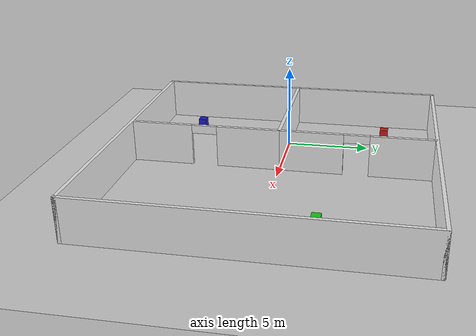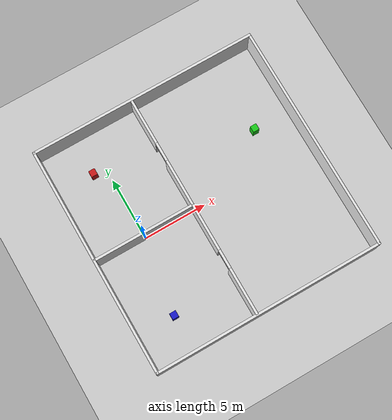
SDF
<?xml version="1.0" ?>
<sdf version="1.8">
  <world name="three_rooms">

    <!-- ====== Plugins ====== -->
    <plugin filename="ignition-gazebo-physics-system"
            name="ignition::gazebo::systems::Physics"/>
    <plugin filename="ignition-gazebo-user-commands-system"
            name="ignition::gazebo::systems::UserCommands"/>
    <plugin filename="ignition-gazebo-scene-broadcaster-system"
            name="ignition::gazebo::systems::SceneBroadcaster"/>
    <plugin filename="ignition-gazebo-contact-system"
            name="ignition::gazebo::systems::Contact"/>

    <!-- ====== Lighting ====== -->
    <light type="directional" name="sun">
      <cast_shadows>true</cast_shadows>
      <pose>0 0 10 0 0 0</pose>
      <diffuse>1 1 1 1</diffuse>
      <specular>0.5 0.5 0.5 1</specular>
      <attenuation>
        <range>1000</range>
        <constant>0.9</constant>
        <linear>0.01</linear>
        <quadratic>0.001</quadratic>
      </attenuation>
      <direction>-0.5 0.1 -0.9</direction>
    </light>

    <!-- ====== Ground Plane ====== -->
    <model name="ground_plane">
      <static>true</static>
      <link name="link">
        <collision name="collision">
          <geometry>
            <plane>
              <normal>0 0 1</normal>
              <size>50 50</size>
            </plane>
          </geometry>
        </collision>
        <visual name="visual">
          <geometry>
            <plane>
              <normal>0 0 1</normal>
              <size>50 50</size>
            </plane>
          </geometry>
          <material>
            <ambient>0.8 0.8 0.8 1</ambient>
            <diffuse>0.8 0.8 0.8 1</diffuse>
          </material>
        </visual>
      </link>
    </model>

    <model name="building">
      <static>true</static>

      <!-- == PERIMETER WALLS == -->

      <!-- North wall: y=9, spans full width -->
      <link name="north_wall">
        <pose>5 9 1.25 0 0 0</pose>
        <collision name="collision">
          <geometry><box><size>18.2 0.2 2.5</size></box></geometry>
        </collision>
        <visual name="visual">
          <geometry><box><size>18.2 0.2 2.5</size></box></geometry>
          <material><ambient>0.9 0.9 0.9 1</ambient><diffuse>0.9 0.9 0.9 1</diffuse></material>
        </visual>
      </link>

      <!-- South wall: y=-9, spans full width -->
      <link name="south_wall">
        <pose>5 -9 1.25 0 0 0</pose>
        <collision name="collision">
          <geometry><box><size>18.2 0.2 2.5</size></box></geometry>
        </collision>
        <visual name="visual">
          <geometry><box><size>18.2 0.2 2.5</size></box></geometry>
          <material><ambient>0.9 0.9 0.9 1</ambient><diffuse>0.9 0.9 0.9 1</diffuse></material>
        </visual>
      </link>

      <!-- West wall: x=-4, spans full height -->
      <link name="west_wall">
        <pose>-4 0 1.25 0 0 0</pose>
        <collision name="collision">
          <geometry><box><size>0.2 18.2 2.5</size></box></geometry>
        </collision>
        <visual name="visual">
          <geometry><box><size>0.2 18.2 2.5</size></box></geometry>
          <material><ambient>0.9 0.9 0.9 1</ambient><diffuse>0.9 0.9 0.9 1</diffuse></material>
        </visual>
      </link>

      <!-- East wall: x=14, spans full height -->
      <link name="east_wall">
        <pose>14 0 1.25 0 0 0</pose>
        <collision name="collision">
          <geometry><box><size>0.2 18.2 2.5</size></box></geometry>
        </collision>
        <visual name="visual">
          <geometry><box><size>0.2 18.2 2.5</size></box></geometry>
          <material><ambient>0.9 0.9 0.9 1</ambient><diffuse>0.9 0.9 0.9 1</diffuse></material>
        </visual>
      </link>

      <!-- == ROOM 1 / ROOM 2 DIVIDER == -->
      <!-- Horizontal wall at y=0, x=-4 to x=4 (8m wide) -->
      <link name="room12_divider">
        <pose>0 0 1.25 0 0 0</pose>
        <collision name="collision">
          <geometry><box><size>8.0 0.2 2.5</size></box></geometry>
        </collision>
        <visual name="visual">
          <geometry><box><size>8.0 0.2 2.5</size></box></geometry>
          <material><ambient>0.9 0.9 0.9 1</ambient><diffuse>0.9 0.9 0.9 1</diffuse></material>
        </visual>
      </link>

      <!-- == LEFT / RIGHT DIVIDER (x=4) == -->
      <!-- Split into 4 segments around 2 doorways            -->
      <!-- Door 1: y=3.75 to y=5.25  (centred at y=4.5)      -->
      <!-- Door 2: y=-5.25 to y=-3.75 (centred at y=-4.5)    -->

      <!-- Segment 1: y=5.25 to y=9 (top, above Door 1) -->
      <link name="divider_seg1">
        <pose>4 7.125 1.25 0 0 0</pose>
        <collision name="collision">
          <geometry><box><size>0.2 3.75 2.5</size></box></geometry>
        </collision>
        <visual name="visual">
          <geometry><box><size>0.2 3.75 2.5</size></box></geometry>
          <material><ambient>0.9 0.9 0.9 1</ambient><diffuse>0.9 0.9 0.9 1</diffuse></material>
        </visual>
      </link>

      <!-- Segment 2: y=0 to y=3.75 (between Door 1 and centre divider) -->
      <link name="divider_seg2">
        <pose>4 1.875 1.25 0 0 0</pose>
        <collision name="collision">
          <geometry><box><size>0.2 3.75 2.5</size></box></geometry>
        </collision>
        <visual name="visual">
          <geometry><box><size>0.2 3.75 2.5</size></box></geometry>
          <material><ambient>0.9 0.9 0.9 1</ambient><diffuse>0.9 0.9 0.9 1</diffuse></material>
        </visual>
      </link>

      <!-- Segment 3: y=-3.75 to y=0 (between centre divider and Door 2) -->
      <link name="divider_seg3">
        <pose>4 -1.875 1.25 0 0 0</pose>
        <collision name="collision">
          <geometry><box><size>0.2 3.75 2.5</size></box></geometry>
        </collision>
        <visual name="visual">
          <geometry><box><size>0.2 3.75 2.5</size></box></geometry>
          <material><ambient>0.9 0.9 0.9 1</ambient><diffuse>0.9 0.9 0.9 1</diffuse></material>
        </visual>
      </link>

      <!-- Segment 4: y=-9 to y=-5.25 (bottom, below Door 2) -->
      <link name="divider_seg4">
        <pose>4 -7.125 1.25 0 0 0</pose>
        <collision name="collision">
          <geometry><box><size>0.2 3.75 2.5</size></box></geometry>
        </collision>
        <visual name="visual">
          <geometry><box><size>0.2 3.75 2.5</size></box></geometry>
          <material><ambient>0.9 0.9 0.9 1</ambient><diffuse>0.9 0.9 0.9 1</diffuse></material>
        </visual>
      </link>

      <!-- Door 1 lintel (centred at y=4.5) -->
      <link name="door1_lintel">
        <pose>4 4.5 2.25 0 0 0</pose>
        <collision name="collision">
          <geometry><box><size>0.2 1.5 0.5</size></box></geometry>
        </collision>
        <visual name="visual">
          <geometry><box><size>0.2 1.5 0.5</size></box></geometry>
          <material><ambient>0.9 0.9 0.9 1</ambient><diffuse>0.9 0.9 0.9 1</diffuse></material>
        </visual>
      </link>

      <!-- Door 2 lintel (centred at y=-4.5) -->
      <link name="door2_lintel">
        <pose>4 -4.5 2.25 0 0 0</pose>
        <collision name="collision">
          <geometry><box><size>0.2 1.5 0.5</size></box></geometry>
        </collision>
        <visual name="visual">
          <geometry><box><size>0.2 1.5 0.5</size></box></geometry>
          <material><ambient>0.9 0.9 0.9 1</ambient><diffuse>0.9 0.9 0.9 1</diffuse></material>
        </visual>
      </link>

    </model>

    <!--                     OBSTACLES                          -->

    <!-- Red obstacle in Room 1 (centre ~(0, 5)) -->
    <model name="obstacle_room1">
      <static>true</static>
      <pose>-1 6 0 0 0 0</pose>
      <link name="link">
        <pose>0 0 0.5 0 0 0</pose>
        <collision name="collision">
          <geometry><box><size>0.5 0.5 1.0</size></box></geometry>
        </collision>
        <visual name="visual">
          <geometry><box><size>0.5 0.5 1.0</size></box></geometry>
          <material><ambient>0.8 0.1 0.1 1</ambient><diffuse>0.8 0.1 0.1 1</diffuse></material>
        </visual>
      </link>
    </model>

    <!-- Blue obstacle in Room 2 (centre ~(0, -5)) -->
    <model name="obstacle_room2">
      <static>true</static>
      <pose>-1 -6 0 0 0 0</pose>
      <link name="link">
        <pose>0 0 0.5 0 0 0</pose>
        <collision name="collision">
          <geometry><box><size>0.5 0.5 1.0</size></box></geometry>
        </collision>
        <visual name="visual">
          <geometry><box><size>0.5 0.5 1.0</size></box></geometry>
          <material><ambient>0.1 0.1 0.8 1</ambient><diffuse>0.1 0.1 0.8 1</diffuse></material>
        </visual>
      </link>
    </model>

    <!-- Green obstacle in Room 3 (centre ~(9, 0)) -->
    <model name="obstacle_room3">
      <static>true</static>
      <pose>11 3 0 0 0 0</pose>
      <link name="link">
        <pose>0 0 0.5 0 0 0</pose>
        <collision name="collision">
          <geometry><box><size>0.5 0.5 1.0</size></box></geometry>
        </collision>
        <visual name="visual">
          <geometry><box><size>0.5 0.5 1.0</size></box></geometry>
          <material><ambient>0.1 0.8 0.1 1</ambient><diffuse>0.1 0.8 0.1 1</diffuse></material>
        </visual>
      </link>
    </model>

    <plugin filename="ignition-gazebo-sensors-system"
        name="ignition::gazebo::systems::Sensors">
        <render_engine>ogre2</render_engine>
    </plugin>
  </world>
</sdf>
